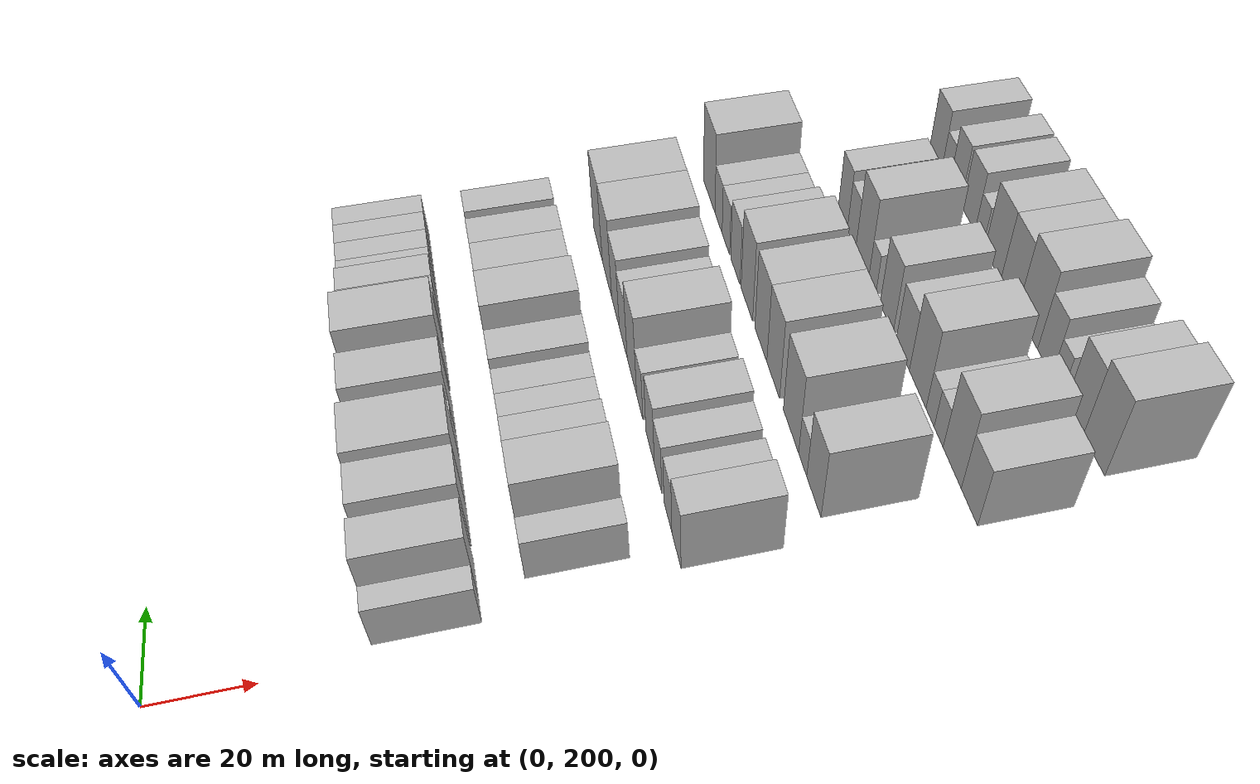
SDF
<sdf version="1.6">
 <world name="default">
  <model name="building_79">
   <static>1</static>
   <pose>50.0000 205.6428 0 0.000000 0.000000 0.000000</pose>
   <link name="link">
    <pose>0 0 6.00 0 0 0</pose>
    <collision name="collision"><geometry><box><size>20.0000 5.1127 12.0000</size></box></geometry></collision>
    <visual name="visual">
     <cast_shadows>0</cast_shadows>
     <geometry><box><size>20.0000 5.1127 12.0000</size></box></geometry>
     <material>
      <script>
       <uri>model://HANNAS_wall/materials/scripts</uri>
       <uri>model://HANNAS_wall/materials/textures</uri>
       <name>vrc/HANNAS_wall</name>
      </script>
     </material>
    </visual>
   </link>
  </model>
  <model name="building_80">
   <static>1</static>
   <pose>50.0000 212.4688 0 0.000000 0.000000 0.000000</pose>
   <link name="link">
    <pose>0 0 10.50 0 0 0</pose>
    <collision name="collision"><geometry><box><size>20.0000 8.5393 21.0000</size></box></geometry></collision>
    <visual name="visual">
     <cast_shadows>0</cast_shadows>
     <geometry><box><size>20.0000 8.5393 21.0000</size></box></geometry>
     <material>
      <script>
       <uri>model://HANNAS_wall/materials/scripts</uri>
       <uri>model://HANNAS_wall/materials/textures</uri>
       <name>vrc/HANNAS_wall</name>
      </script>
     </material>
    </visual>
   </link>
  </model>
  <model name="building_81">
   <static>1</static>
   <pose>50.0000 224.3114 0 0.000000 0.000000 0.000000</pose>
   <link name="link">
    <pose>0 0 10.50 0 0 0</pose>
    <collision name="collision"><geometry><box><size>20.0000 9.1458 21.0000</size></box></geometry></collision>
    <visual name="visual">
     <cast_shadows>0</cast_shadows>
     <geometry><box><size>20.0000 9.1458 21.0000</size></box></geometry>
     <material>
      <script>
       <uri>model://HANNAS_wall/materials/scripts</uri>
       <uri>model://HANNAS_wall/materials/textures</uri>
       <name>vrc/HANNAS_wall</name>
      </script>
     </material>
    </visual>
   </link>
  </model>
  <model name="building_82">
   <static>1</static>
   <pose>50.0000 234.7901 0 0.000000 0.000000 0.000000</pose>
   <link name="link">
    <pose>0 0 12.00 0 0 0</pose>
    <collision name="collision"><geometry><box><size>20.0000 11.8116 24.0000</size></box></geometry></collision>
    <visual name="visual">
     <cast_shadows>0</cast_shadows>
     <geometry><box><size>20.0000 11.8116 24.0000</size></box></geometry>
     <material>
      <script>
       <uri>model://HANNAS_wall/materials/scripts</uri>
       <uri>model://HANNAS_wall/materials/textures</uri>
       <name>vrc/HANNAS_wall</name>
      </script>
     </material>
    </visual>
   </link>
  </model>
  <model name="building_83">
   <static>1</static>
   <pose>50.0000 243.5842 0 0.000000 0.000000 0.000000</pose>
   <link name="link">
    <pose>0 0 6.00 0 0 0</pose>
    <collision name="collision"><geometry><box><size>20.0000 5.7765 12.0000</size></box></geometry></collision>
    <visual name="visual">
     <cast_shadows>0</cast_shadows>
     <geometry><box><size>20.0000 5.7765 12.0000</size></box></geometry>
     <material>
      <script>
       <uri>model://HANNAS_wall/materials/scripts</uri>
       <uri>model://HANNAS_wall/materials/textures</uri>
       <name>vrc/HANNAS_wall</name>
      </script>
     </material>
    </visual>
   </link>
  </model>
  <model name="building_84">
   <static>1</static>
   <pose>50.0000 251.0885 0 0.000000 0.000000 0.000000</pose>
   <link name="link">
    <pose>0 0 10.50 0 0 0</pose>
    <collision name="collision"><geometry><box><size>20.0000 9.2321 21.0000</size></box></geometry></collision>
    <visual name="visual">
     <cast_shadows>0</cast_shadows>
     <geometry><box><size>20.0000 9.2321 21.0000</size></box></geometry>
     <material>
      <script>
       <uri>model://HANNAS_wall/materials/scripts</uri>
       <uri>model://HANNAS_wall/materials/textures</uri>
       <name>vrc/HANNAS_wall</name>
      </script>
     </material>
    </visual>
   </link>
  </model>
  <model name="building_85">
   <static>1</static>
   <pose>50.0000 264.0819 0 0.000000 0.000000 0.000000</pose>
   <link name="link">
    <pose>0 0 12.00 0 0 0</pose>
    <collision name="collision"><geometry><box><size>20.0000 10.7547 24.0000</size></box></geometry></collision>
    <visual name="visual">
     <cast_shadows>0</cast_shadows>
     <geometry><box><size>20.0000 10.7547 24.0000</size></box></geometry>
     <material>
      <script>
       <uri>model://HANNAS_wall/materials/scripts</uri>
       <uri>model://HANNAS_wall/materials/textures</uri>
       <name>vrc/HANNAS_wall</name>
      </script>
     </material>
    </visual>
   </link>
  </model>
  <model name="building_86">
   <static>1</static>
   <pose>50.0000 275.5857 0 0.000000 0.000000 0.000000</pose>
   <link name="link">
    <pose>0 0 7.50 0 0 0</pose>
    <collision name="collision"><geometry><box><size>20.0000 6.2529 15.0000</size></box></geometry></collision>
    <visual name="visual">
     <cast_shadows>0</cast_shadows>
     <geometry><box><size>20.0000 6.2529 15.0000</size></box></geometry>
     <material>
      <script>
       <uri>model://HANNAS_wall/materials/scripts</uri>
       <uri>model://HANNAS_wall/materials/textures</uri>
       <name>vrc/HANNAS_wall</name>
      </script>
     </material>
    </visual>
   </link>
  </model>
  <model name="building_87">
   <static>1</static>
   <pose>50.0000 281.9773 0 0.000000 0.000000 0.000000</pose>
   <link name="link">
    <pose>0 0 7.50 0 0 0</pose>
    <collision name="collision"><geometry><box><size>20.0000 6.5304 15.0000</size></box></geometry></collision>
    <visual name="visual">
     <cast_shadows>0</cast_shadows>
     <geometry><box><size>20.0000 6.5304 15.0000</size></box></geometry>
     <material>
      <script>
       <uri>model://HANNAS_wall/materials/scripts</uri>
       <uri>model://HANNAS_wall/materials/textures</uri>
       <name>vrc/HANNAS_wall</name>
      </script>
     </material>
    </visual>
   </link>
  </model>
  <model name="building_88">
   <static>1</static>
   <pose>50.0000 287.8829 0 0.000000 0.000000 0.000000</pose>
   <link name="link">
    <pose>0 0 6.00 0 0 0</pose>
    <collision name="collision"><geometry><box><size>20.0000 5.2807 12.0000</size></box></geometry></collision>
    <visual name="visual">
     <cast_shadows>0</cast_shadows>
     <geometry><box><size>20.0000 5.2807 12.0000</size></box></geometry>
     <material>
      <script>
       <uri>model://HANNAS_wall/materials/scripts</uri>
       <uri>model://HANNAS_wall/materials/textures</uri>
       <name>vrc/HANNAS_wall</name>
      </script>
     </material>
    </visual>
   </link>
  </model>
  <model name="building_89">
   <static>1</static>
   <pose>50.0000 293.3428 0 0.000000 0.000000 0.000000</pose>
   <link name="link">
    <pose>0 0 6.00 0 0 0</pose>
    <collision name="collision"><geometry><box><size>20.0000 5.6391 12.0000</size></box></geometry></collision>
    <visual name="visual">
     <cast_shadows>0</cast_shadows>
     <geometry><box><size>20.0000 5.6391 12.0000</size></box></geometry>
     <material>
      <script>
       <uri>model://HANNAS_wall/materials/scripts</uri>
       <uri>model://HANNAS_wall/materials/textures</uri>
       <name>vrc/HANNAS_wall</name>
      </script>
     </material>
    </visual>
   </link>
  </model>
  <model name="building_90">
   <static>1</static>
   <pose>50.0000 299.0528 0 0.000000 0.000000 0.000000</pose>
   <link name="link">
    <pose>0 0 6.00 0 0 0</pose>
    <collision name="collision"><geometry><box><size>20.0000 5.7807 12.0000</size></box></geometry></collision>
    <visual name="visual">
     <cast_shadows>0</cast_shadows>
     <geometry><box><size>20.0000 5.7807 12.0000</size></box></geometry>
     <material>
      <script>
       <uri>model://HANNAS_wall/materials/scripts</uri>
       <uri>model://HANNAS_wall/materials/textures</uri>
       <name>vrc/HANNAS_wall</name>
      </script>
     </material>
    </visual>
   </link>
  </model>
  <model name="building_91">
   <static>1</static>
   <pose>50.0000 304.7321 0 0.000000 0.000000 0.000000</pose>
   <link name="link">
    <pose>0 0 6.00 0 0 0</pose>
    <collision name="collision"><geometry><box><size>20.0000 5.5780 12.0000</size></box></geometry></collision>
    <visual name="visual">
     <cast_shadows>0</cast_shadows>
     <geometry><box><size>20.0000 5.5780 12.0000</size></box></geometry>
     <material>
      <script>
       <uri>model://HANNAS_wall/materials/scripts</uri>
       <uri>model://HANNAS_wall/materials/textures</uri>
       <name>vrc/HANNAS_wall</name>
      </script>
     </material>
    </visual>
   </link>
  </model>
  <model name="building_195">
   <static>1</static>
   <pose>79.0000 213.4443 0 0.000000 0.000000 0.000000</pose>
   <link name="link">
    <pose>0 0 6.00 0 0 0</pose>
    <collision name="collision"><geometry><box><size>20.0000 5.8600 12.0000</size></box></geometry></collision>
    <visual name="visual">
     <cast_shadows>0</cast_shadows>
     <geometry><box><size>20.0000 5.8600 12.0000</size></box></geometry>
     <material>
      <script>
       <uri>model://HANNAS_wall/materials/scripts</uri>
       <uri>model://HANNAS_wall/materials/textures</uri>
       <name>vrc/HANNAS_wall</name>
      </script>
     </material>
    </visual>
   </link>
  </model>
  <model name="building_196">
   <static>1</static>
   <pose>79.0000 222.4169 0 0.000000 0.000000 0.000000</pose>
   <link name="link">
    <pose>0 0 10.50 0 0 0</pose>
    <collision name="collision"><geometry><box><size>20.0000 10.0852 21.0000</size></box></geometry></collision>
    <visual name="visual">
     <cast_shadows>0</cast_shadows>
     <geometry><box><size>20.0000 10.0852 21.0000</size></box></geometry>
     <material>
      <script>
       <uri>model://HANNAS_wall/materials/scripts</uri>
       <uri>model://HANNAS_wall/materials/textures</uri>
       <name>vrc/HANNAS_wall</name>
      </script>
     </material>
    </visual>
   </link>
  </model>
  <model name="building_197">
   <static>1</static>
   <pose>79.0000 231.4531 0 0.000000 0.000000 0.000000</pose>
   <link name="link">
    <pose>0 0 9.00 0 0 0</pose>
    <collision name="collision"><geometry><box><size>20.0000 7.9871 18.0000</size></box></geometry></collision>
    <visual name="visual">
     <cast_shadows>0</cast_shadows>
     <geometry><box><size>20.0000 7.9871 18.0000</size></box></geometry>
     <material>
      <script>
       <uri>model://HANNAS_wall/materials/scripts</uri>
       <uri>model://HANNAS_wall/materials/textures</uri>
       <name>vrc/HANNAS_wall</name>
      </script>
     </material>
    </visual>
   </link>
  </model>
  <model name="building_198">
   <static>1</static>
   <pose>79.0000 240.5364 0 0.000000 0.000000 0.000000</pose>
   <link name="link">
    <pose>0 0 7.50 0 0 0</pose>
    <collision name="collision"><geometry><box><size>20.0000 6.1796 15.0000</size></box></geometry></collision>
    <visual name="visual">
     <cast_shadows>0</cast_shadows>
     <geometry><box><size>20.0000 6.1796 15.0000</size></box></geometry>
     <material>
      <script>
       <uri>model://HANNAS_wall/materials/scripts</uri>
       <uri>model://HANNAS_wall/materials/textures</uri>
       <name>vrc/HANNAS_wall</name>
      </script>
     </material>
    </visual>
   </link>
  </model>
  <model name="building_199">
   <static>1</static>
   <pose>79.0000 246.8462 0 0.000000 0.000000 0.000000</pose>
   <link name="link">
    <pose>0 0 7.50 0 0 0</pose>
    <collision name="collision"><geometry><box><size>20.0000 6.4398 15.0000</size></box></geometry></collision>
    <visual name="visual">
     <cast_shadows>0</cast_shadows>
     <geometry><box><size>20.0000 6.4398 15.0000</size></box></geometry>
     <material>
      <script>
       <uri>model://HANNAS_wall/materials/scripts</uri>
       <uri>model://HANNAS_wall/materials/textures</uri>
       <name>vrc/HANNAS_wall</name>
      </script>
     </material>
    </visual>
   </link>
  </model>
  <model name="building_200">
   <static>1</static>
   <pose>79.0000 253.9946 0 0.000000 0.000000 0.000000</pose>
   <link name="link">
    <pose>0 0 9.00 0 0 0</pose>
    <collision name="collision"><geometry><box><size>20.0000 7.8572 18.0000</size></box></geometry></collision>
    <visual name="visual">
     <cast_shadows>0</cast_shadows>
     <geometry><box><size>20.0000 7.8572 18.0000</size></box></geometry>
     <material>
      <script>
       <uri>model://HANNAS_wall/materials/scripts</uri>
       <uri>model://HANNAS_wall/materials/textures</uri>
       <name>vrc/HANNAS_wall</name>
      </script>
     </material>
    </visual>
   </link>
  </model>
  <model name="building_201">
   <static>1</static>
   <pose>79.0000 263.9439 0 0.000000 0.000000 0.000000</pose>
   <link name="link">
    <pose>0 0 12.00 0 0 0</pose>
    <collision name="collision"><geometry><box><size>20.0000 10.0415 24.0000</size></box></geometry></collision>
    <visual name="visual">
     <cast_shadows>0</cast_shadows>
     <geometry><box><size>20.0000 10.0415 24.0000</size></box></geometry>
     <material>
      <script>
       <uri>model://HANNAS_wall/materials/scripts</uri>
       <uri>model://HANNAS_wall/materials/textures</uri>
       <name>vrc/HANNAS_wall</name>
      </script>
     </material>
    </visual>
   </link>
  </model>
  <model name="building_202">
   <static>1</static>
   <pose>79.0000 271.7608 0 0.000000 0.000000 0.000000</pose>
   <link name="link">
    <pose>0 0 6.00 0 0 0</pose>
    <collision name="collision"><geometry><box><size>20.0000 5.5922 12.0000</size></box></geometry></collision>
    <visual name="visual">
     <cast_shadows>0</cast_shadows>
     <geometry><box><size>20.0000 5.5922 12.0000</size></box></geometry>
     <material>
      <script>
       <uri>model://HANNAS_wall/materials/scripts</uri>
       <uri>model://HANNAS_wall/materials/textures</uri>
       <name>vrc/HANNAS_wall</name>
      </script>
     </material>
    </visual>
   </link>
  </model>
  <model name="building_203">
   <static>1</static>
   <pose>79.0000 278.9169 0 0.000000 0.000000 0.000000</pose>
   <link name="link">
    <pose>0 0 9.00 0 0 0</pose>
    <collision name="collision"><geometry><box><size>20.0000 8.7202 18.0000</size></box></geometry></collision>
    <visual name="visual">
     <cast_shadows>0</cast_shadows>
     <geometry><box><size>20.0000 8.7202 18.0000</size></box></geometry>
     <material>
      <script>
       <uri>model://HANNAS_wall/materials/scripts</uri>
       <uri>model://HANNAS_wall/materials/textures</uri>
       <name>vrc/HANNAS_wall</name>
      </script>
     </material>
    </visual>
   </link>
  </model>
  <model name="building_204">
   <static>1</static>
   <pose>79.0000 287.1266 0 0.000000 0.000000 0.000000</pose>
   <link name="link">
    <pose>0 0 9.00 0 0 0</pose>
    <collision name="collision"><geometry><box><size>20.0000 7.6991 18.0000</size></box></geometry></collision>
    <visual name="visual">
     <cast_shadows>0</cast_shadows>
     <geometry><box><size>20.0000 7.6991 18.0000</size></box></geometry>
     <material>
      <script>
       <uri>model://HANNAS_wall/materials/scripts</uri>
       <uri>model://HANNAS_wall/materials/textures</uri>
       <name>vrc/HANNAS_wall</name>
      </script>
     </material>
    </visual>
   </link>
  </model>
  <model name="building_205">
   <static>1</static>
   <pose>79.0000 293.6410 0 0.000000 0.000000 0.000000</pose>
   <link name="link">
    <pose>0 0 6.00 0 0 0</pose>
    <collision name="collision"><geometry><box><size>20.0000 5.3297 12.0000</size></box></geometry></collision>
    <visual name="visual">
     <cast_shadows>0</cast_shadows>
     <geometry><box><size>20.0000 5.3297 12.0000</size></box></geometry>
     <material>
      <script>
       <uri>model://HANNAS_wall/materials/scripts</uri>
       <uri>model://HANNAS_wall/materials/textures</uri>
       <name>vrc/HANNAS_wall</name>
      </script>
     </material>
    </visual>
   </link>
  </model>
  <model name="building_206">
   <static>1</static>
   <pose>79.0000 299.8928 0 0.000000 0.000000 0.000000</pose>
   <link name="link">
    <pose>0 0 7.50 0 0 0</pose>
    <collision name="collision"><geometry><box><size>20.0000 7.1740 15.0000</size></box></geometry></collision>
    <visual name="visual">
     <cast_shadows>0</cast_shadows>
     <geometry><box><size>20.0000 7.1740 15.0000</size></box></geometry>
     <material>
      <script>
       <uri>model://HANNAS_wall/materials/scripts</uri>
       <uri>model://HANNAS_wall/materials/textures</uri>
       <name>vrc/HANNAS_wall</name>
      </script>
     </material>
    </visual>
   </link>
  </model>
  <model name="building_307">
   <static>1</static>
   <pose>108.0000 210.1388 0 0.000000 0.000000 0.000000</pose>
   <link name="link">
    <pose>0 0 9.00 0 0 0</pose>
    <collision name="collision"><geometry><box><size>20.0000 8.1497 18.0000</size></box></geometry></collision>
    <visual name="visual">
     <cast_shadows>0</cast_shadows>
     <geometry><box><size>20.0000 8.1497 18.0000</size></box></geometry>
     <material>
      <script>
       <uri>model://HANNAS_wall/materials/scripts</uri>
       <uri>model://HANNAS_wall/materials/textures</uri>
       <name>vrc/HANNAS_wall</name>
      </script>
     </material>
    </visual>
   </link>
  </model>
  <model name="building_308">
   <static>1</static>
   <pose>108.0000 217.8479 0 0.000000 0.000000 0.000000</pose>
   <link name="link">
    <pose>0 0 7.50 0 0 0</pose>
    <collision name="collision"><geometry><box><size>20.0000 7.2685 15.0000</size></box></geometry></collision>
    <visual name="visual">
     <cast_shadows>0</cast_shadows>
     <geometry><box><size>20.0000 7.2685 15.0000</size></box></geometry>
     <material>
      <script>
       <uri>model://HANNAS_wall/materials/scripts</uri>
       <uri>model://HANNAS_wall/materials/textures</uri>
       <name>vrc/HANNAS_wall</name>
      </script>
     </material>
    </visual>
   </link>
  </model>
  <model name="building_309">
   <static>1</static>
   <pose>108.0000 227.0810 0 0.000000 0.000000 0.000000</pose>
   <link name="link">
    <pose>0 0 7.50 0 0 0</pose>
    <collision name="collision"><geometry><box><size>20.0000 7.1978 15.0000</size></box></geometry></collision>
    <visual name="visual">
     <cast_shadows>0</cast_shadows>
     <geometry><box><size>20.0000 7.1978 15.0000</size></box></geometry>
     <material>
      <script>
       <uri>model://HANNAS_wall/materials/scripts</uri>
       <uri>model://HANNAS_wall/materials/textures</uri>
       <name>vrc/HANNAS_wall</name>
      </script>
     </material>
    </visual>
   </link>
  </model>
  <model name="building_310">
   <static>1</static>
   <pose>108.0000 234.9306 0 0.000000 0.000000 0.000000</pose>
   <link name="link">
    <pose>0 0 9.00 0 0 0</pose>
    <collision name="collision"><geometry><box><size>20.0000 8.5014 18.0000</size></box></geometry></collision>
    <visual name="visual">
     <cast_shadows>0</cast_shadows>
     <geometry><box><size>20.0000 8.5014 18.0000</size></box></geometry>
     <material>
      <script>
       <uri>model://HANNAS_wall/materials/scripts</uri>
       <uri>model://HANNAS_wall/materials/textures</uri>
       <name>vrc/HANNAS_wall</name>
      </script>
     </material>
    </visual>
   </link>
  </model>
  <model name="building_311">
   <static>1</static>
   <pose>108.0000 245.5363 0 0.000000 0.000000 0.000000</pose>
   <link name="link">
    <pose>0 0 7.50 0 0 0</pose>
    <collision name="collision"><geometry><box><size>20.0000 6.7099 15.0000</size></box></geometry></collision>
    <visual name="visual">
     <cast_shadows>0</cast_shadows>
     <geometry><box><size>20.0000 6.7099 15.0000</size></box></geometry>
     <material>
      <script>
       <uri>model://HANNAS_wall/materials/scripts</uri>
       <uri>model://HANNAS_wall/materials/textures</uri>
       <name>vrc/HANNAS_wall</name>
      </script>
     </material>
    </visual>
   </link>
  </model>
  <model name="building_312">
   <static>1</static>
   <pose>108.0000 254.0396 0 0.000000 0.000000 0.000000</pose>
   <link name="link">
    <pose>0 0 12.00 0 0 0</pose>
    <collision name="collision"><geometry><box><size>20.0000 10.2968 24.0000</size></box></geometry></collision>
    <visual name="visual">
     <cast_shadows>0</cast_shadows>
     <geometry><box><size>20.0000 10.2968 24.0000</size></box></geometry>
     <material>
      <script>
       <uri>model://HANNAS_wall/materials/scripts</uri>
       <uri>model://HANNAS_wall/materials/textures</uri>
       <name>vrc/HANNAS_wall</name>
      </script>
     </material>
    </visual>
   </link>
  </model>
  <model name="building_313">
   <static>1</static>
   <pose>108.0000 263.6789 0 0.000000 0.000000 0.000000</pose>
   <link name="link">
    <pose>0 0 9.00 0 0 0</pose>
    <collision name="collision"><geometry><box><size>20.0000 8.9817 18.0000</size></box></geometry></collision>
    <visual name="visual">
     <cast_shadows>0</cast_shadows>
     <geometry><box><size>20.0000 8.9817 18.0000</size></box></geometry>
     <material>
      <script>
       <uri>model://HANNAS_wall/materials/scripts</uri>
       <uri>model://HANNAS_wall/materials/textures</uri>
       <name>vrc/HANNAS_wall</name>
      </script>
     </material>
    </visual>
   </link>
  </model>
  <model name="building_314">
   <static>1</static>
   <pose>108.0000 272.7042 0 0.000000 0.000000 0.000000</pose>
   <link name="link">
    <pose>0 0 10.50 0 0 0</pose>
    <collision name="collision"><geometry><box><size>20.0000 9.0689 21.0000</size></box></geometry></collision>
    <visual name="visual">
     <cast_shadows>0</cast_shadows>
     <geometry><box><size>20.0000 9.0689 21.0000</size></box></geometry>
     <material>
      <script>
       <uri>model://HANNAS_wall/materials/scripts</uri>
       <uri>model://HANNAS_wall/materials/textures</uri>
       <name>vrc/HANNAS_wall</name>
      </script>
     </material>
    </visual>
   </link>
  </model>
  <model name="building_315">
   <static>1</static>
   <pose>108.0000 283.1587 0 0.000000 0.000000 0.000000</pose>
   <link name="link">
    <pose>0 0 12.00 0 0 0</pose>
    <collision name="collision"><geometry><box><size>20.0000 11.8402 24.0000</size></box></geometry></collision>
    <visual name="visual">
     <cast_shadows>0</cast_shadows>
     <geometry><box><size>20.0000 11.8402 24.0000</size></box></geometry>
     <material>
      <script>
       <uri>model://HANNAS_wall/materials/scripts</uri>
       <uri>model://HANNAS_wall/materials/textures</uri>
       <name>vrc/HANNAS_wall</name>
      </script>
     </material>
    </visual>
   </link>
  </model>
  <model name="building_316">
   <static>1</static>
   <pose>108.0000 294.6804 0 0.000000 0.000000 0.000000</pose>
   <link name="link">
    <pose>0 0 12.00 0 0 0</pose>
    <collision name="collision"><geometry><box><size>20.0000 11.2031 24.0000</size></box></geometry></collision>
    <visual name="visual">
     <cast_shadows>0</cast_shadows>
     <geometry><box><size>20.0000 11.2031 24.0000</size></box></geometry>
     <material>
      <script>
       <uri>model://HANNAS_wall/materials/scripts</uri>
       <uri>model://HANNAS_wall/materials/textures</uri>
       <name>vrc/HANNAS_wall</name>
      </script>
     </material>
    </visual>
   </link>
  </model>
  <model name="building_418">
   <static>1</static>
   <pose>137.0000 216.0591 0 0.000000 0.000000 0.000000</pose>
   <link name="link">
    <pose>0 0 10.50 0 0 0</pose>
    <collision name="collision"><geometry><box><size>20.0000 9.9078 21.0000</size></box></geometry></collision>
    <visual name="visual">
     <cast_shadows>0</cast_shadows>
     <geometry><box><size>20.0000 9.9078 21.0000</size></box></geometry>
     <material>
      <script>
       <uri>model://HANNAS_wall/materials/scripts</uri>
       <uri>model://HANNAS_wall/materials/textures</uri>
       <name>vrc/HANNAS_wall</name>
      </script>
     </material>
    </visual>
   </link>
  </model>
  <model name="building_419">
   <static>1</static>
   <pose>137.0000 223.9644 0 0.000000 0.000000 0.000000</pose>
   <link name="link">
    <pose>0 0 6.00 0 0 0</pose>
    <collision name="collision"><geometry><box><size>20.0000 5.9028 12.0000</size></box></geometry></collision>
    <visual name="visual">
     <cast_shadows>0</cast_shadows>
     <geometry><box><size>20.0000 5.9028 12.0000</size></box></geometry>
     <material>
      <script>
       <uri>model://HANNAS_wall/materials/scripts</uri>
       <uri>model://HANNAS_wall/materials/textures</uri>
       <name>vrc/HANNAS_wall</name>
      </script>
     </material>
    </visual>
   </link>
  </model>
  <model name="building_420">
   <static>1</static>
   <pose>137.0000 232.6401 0 0.000000 0.000000 0.000000</pose>
   <link name="link">
    <pose>0 0 12.00 0 0 0</pose>
    <collision name="collision"><geometry><box><size>20.0000 11.4486 24.0000</size></box></geometry></collision>
    <visual name="visual">
     <cast_shadows>0</cast_shadows>
     <geometry><box><size>20.0000 11.4486 24.0000</size></box></geometry>
     <material>
      <script>
       <uri>model://HANNAS_wall/materials/scripts</uri>
       <uri>model://HANNAS_wall/materials/textures</uri>
       <name>vrc/HANNAS_wall</name>
      </script>
     </material>
    </visual>
   </link>
  </model>
  <model name="building_421">
   <static>1</static>
   <pose>137.0000 246.5015 0 0.000000 0.000000 0.000000</pose>
   <link name="link">
    <pose>0 0 12.00 0 0 0</pose>
    <collision name="collision"><geometry><box><size>20.0000 10.2742 24.0000</size></box></geometry></collision>
    <visual name="visual">
     <cast_shadows>0</cast_shadows>
     <geometry><box><size>20.0000 10.2742 24.0000</size></box></geometry>
     <material>
      <script>
       <uri>model://HANNAS_wall/materials/scripts</uri>
       <uri>model://HANNAS_wall/materials/textures</uri>
       <name>vrc/HANNAS_wall</name>
      </script>
     </material>
    </visual>
   </link>
  </model>
  <model name="building_422">
   <static>1</static>
   <pose>137.0000 256.6675 0 0.000000 0.000000 0.000000</pose>
   <link name="link">
    <pose>0 0 12.00 0 0 0</pose>
    <collision name="collision"><geometry><box><size>20.0000 10.0579 24.0000</size></box></geometry></collision>
    <visual name="visual">
     <cast_shadows>0</cast_shadows>
     <geometry><box><size>20.0000 10.0579 24.0000</size></box></geometry>
     <material>
      <script>
       <uri>model://HANNAS_wall/materials/scripts</uri>
       <uri>model://HANNAS_wall/materials/textures</uri>
       <name>vrc/HANNAS_wall</name>
      </script>
     </material>
    </visual>
   </link>
  </model>
  <model name="building_423">
   <static>1</static>
   <pose>137.0000 268.8392 0 0.000000 0.000000 0.000000</pose>
   <link name="link">
    <pose>0 0 12.00 0 0 0</pose>
    <collision name="collision"><geometry><box><size>20.0000 10.2855 24.0000</size></box></geometry></collision>
    <visual name="visual">
     <cast_shadows>0</cast_shadows>
     <geometry><box><size>20.0000 10.2855 24.0000</size></box></geometry>
     <material>
      <script>
       <uri>model://HANNAS_wall/materials/scripts</uri>
       <uri>model://HANNAS_wall/materials/textures</uri>
       <name>vrc/HANNAS_wall</name>
      </script>
     </material>
    </visual>
   </link>
  </model>
  <model name="building_424">
   <static>1</static>
   <pose>137.0000 279.3304 0 0.000000 0.000000 0.000000</pose>
   <link name="link">
    <pose>0 0 9.00 0 0 0</pose>
    <collision name="collision"><geometry><box><size>20.0000 8.6967 18.0000</size></box></geometry></collision>
    <visual name="visual">
     <cast_shadows>0</cast_shadows>
     <geometry><box><size>20.0000 8.6967 18.0000</size></box></geometry>
     <material>
      <script>
       <uri>model://HANNAS_wall/materials/scripts</uri>
       <uri>model://HANNAS_wall/materials/textures</uri>
       <name>vrc/HANNAS_wall</name>
      </script>
     </material>
    </visual>
   </link>
  </model>
  <model name="building_425">
   <static>1</static>
   <pose>137.0000 288.3190 0 0.000000 0.000000 0.000000</pose>
   <link name="link">
    <pose>0 0 7.50 0 0 0</pose>
    <collision name="collision"><geometry><box><size>20.0000 7.2805 15.0000</size></box></geometry></collision>
    <visual name="visual">
     <cast_shadows>0</cast_shadows>
     <geometry><box><size>20.0000 7.2805 15.0000</size></box></geometry>
     <material>
      <script>
       <uri>model://HANNAS_wall/materials/scripts</uri>
       <uri>model://HANNAS_wall/materials/textures</uri>
       <name>vrc/HANNAS_wall</name>
      </script>
     </material>
    </visual>
   </link>
  </model>
  <model name="building_426">
   <static>1</static>
   <pose>137.0000 295.4996 0 0.000000 0.000000 0.000000</pose>
   <link name="link">
    <pose>0 0 7.50 0 0 0</pose>
    <collision name="collision"><geometry><box><size>20.0000 7.0808 15.0000</size></box></geometry></collision>
    <visual name="visual">
     <cast_shadows>0</cast_shadows>
     <geometry><box><size>20.0000 7.0808 15.0000</size></box></geometry>
     <material>
      <script>
       <uri>model://HANNAS_wall/materials/scripts</uri>
       <uri>model://HANNAS_wall/materials/textures</uri>
       <name>vrc/HANNAS_wall</name>
      </script>
     </material>
    </visual>
   </link>
  </model>
  <model name="building_427">
   <static>1</static>
   <pose>137.0000 304.9110 0 0.000000 0.000000 0.000000</pose>
   <link name="link">
    <pose>0 0 12.00 0 0 0</pose>
    <collision name="collision"><geometry><box><size>20.0000 11.7420 24.0000</size></box></geometry></collision>
    <visual name="visual">
     <cast_shadows>0</cast_shadows>
     <geometry><box><size>20.0000 11.7420 24.0000</size></box></geometry>
     <material>
      <script>
       <uri>model://HANNAS_wall/materials/scripts</uri>
       <uri>model://HANNAS_wall/materials/textures</uri>
       <name>vrc/HANNAS_wall</name>
      </script>
     </material>
    </visual>
   </link>
  </model>
  <model name="building_535">
   <static>1</static>
   <pose>166.0000 206.9370 0 0.000000 0.000000 0.000000</pose>
   <link name="link">
    <pose>0 0 9.00 0 0 0</pose>
    <collision name="collision"><geometry><box><size>20.0000 8.8829 18.0000</size></box></geometry></collision>
    <visual name="visual">
     <cast_shadows>0</cast_shadows>
     <geometry><box><size>20.0000 8.8829 18.0000</size></box></geometry>
     <material>
      <script>
       <uri>model://HANNAS_wall/materials/scripts</uri>
       <uri>model://HANNAS_wall/materials/textures</uri>
       <name>vrc/HANNAS_wall</name>
      </script>
     </material>
    </visual>
   </link>
  </model>
  <model name="building_536">
   <static>1</static>
   <pose>166.0000 216.5528 0 0.000000 0.000000 0.000000</pose>
   <link name="link">
    <pose>0 0 12.00 0 0 0</pose>
    <collision name="collision"><geometry><box><size>20.0000 10.3487 24.0000</size></box></geometry></collision>
    <visual name="visual">
     <cast_shadows>0</cast_shadows>
     <geometry><box><size>20.0000 10.3487 24.0000</size></box></geometry>
     <material>
      <script>
       <uri>model://HANNAS_wall/materials/scripts</uri>
       <uri>model://HANNAS_wall/materials/textures</uri>
       <name>vrc/HANNAS_wall</name>
      </script>
     </material>
    </visual>
   </link>
  </model>
  <model name="building_537">
   <static>1</static>
   <pose>166.0000 224.3945 0 0.000000 0.000000 0.000000</pose>
   <link name="link">
    <pose>0 0 6.00 0 0 0</pose>
    <collision name="collision"><geometry><box><size>20.0000 5.3346 12.0000</size></box></geometry></collision>
    <visual name="visual">
     <cast_shadows>0</cast_shadows>
     <geometry><box><size>20.0000 5.3346 12.0000</size></box></geometry>
     <material>
      <script>
       <uri>model://HANNAS_wall/materials/scripts</uri>
       <uri>model://HANNAS_wall/materials/textures</uri>
       <name>vrc/HANNAS_wall</name>
      </script>
     </material>
    </visual>
   </link>
  </model>
  <model name="building_538">
   <static>1</static>
   <pose>166.0000 229.5328 0 0.000000 0.000000 0.000000</pose>
   <link name="link">
    <pose>0 0 6.00 0 0 0</pose>
    <collision name="collision"><geometry><box><size>20.0000 4.9421 12.0000</size></box></geometry></collision>
    <visual name="visual">
     <cast_shadows>0</cast_shadows>
     <geometry><box><size>20.0000 4.9421 12.0000</size></box></geometry>
     <material>
      <script>
       <uri>model://HANNAS_wall/materials/scripts</uri>
       <uri>model://HANNAS_wall/materials/textures</uri>
       <name>vrc/HANNAS_wall</name>
      </script>
     </material>
    </visual>
   </link>
  </model>
  <model name="building_539">
   <static>1</static>
   <pose>166.0000 237.2424 0 0.000000 0.000000 0.000000</pose>
   <link name="link">
    <pose>0 0 12.00 0 0 0</pose>
    <collision name="collision"><geometry><box><size>20.0000 10.4771 24.0000</size></box></geometry></collision>
    <visual name="visual">
     <cast_shadows>0</cast_shadows>
     <geometry><box><size>20.0000 10.4771 24.0000</size></box></geometry>
     <material>
      <script>
       <uri>model://HANNAS_wall/materials/scripts</uri>
       <uri>model://HANNAS_wall/materials/textures</uri>
       <name>vrc/HANNAS_wall</name>
      </script>
     </material>
    </visual>
   </link>
  </model>
  <model name="building_540">
   <static>1</static>
   <pose>166.0000 246.8794 0 0.000000 0.000000 0.000000</pose>
   <link name="link">
    <pose>0 0 9.00 0 0 0</pose>
    <collision name="collision"><geometry><box><size>20.0000 8.7969 18.0000</size></box></geometry></collision>
    <visual name="visual">
     <cast_shadows>0</cast_shadows>
     <geometry><box><size>20.0000 8.7969 18.0000</size></box></geometry>
     <material>
      <script>
       <uri>model://HANNAS_wall/materials/scripts</uri>
       <uri>model://HANNAS_wall/materials/textures</uri>
       <name>vrc/HANNAS_wall</name>
      </script>
     </material>
    </visual>
   </link>
  </model>
  <model name="building_541">
   <static>1</static>
   <pose>166.0000 257.8023 0 0.000000 0.000000 0.000000</pose>
   <link name="link">
    <pose>0 0 10.50 0 0 0</pose>
    <collision name="collision"><geometry><box><size>20.0000 9.0489 21.0000</size></box></geometry></collision>
    <visual name="visual">
     <cast_shadows>0</cast_shadows>
     <geometry><box><size>20.0000 9.0489 21.0000</size></box></geometry>
     <material>
      <script>
       <uri>model://HANNAS_wall/materials/scripts</uri>
       <uri>model://HANNAS_wall/materials/textures</uri>
       <name>vrc/HANNAS_wall</name>
      </script>
     </material>
    </visual>
   </link>
  </model>
  <model name="building_542">
   <static>1</static>
   <pose>166.0000 267.8949 0 0.000000 0.000000 0.000000</pose>
   <link name="link">
    <pose>0 0 6.00 0 0 0</pose>
    <collision name="collision"><geometry><box><size>20.0000 5.1362 12.0000</size></box></geometry></collision>
    <visual name="visual">
     <cast_shadows>0</cast_shadows>
     <geometry><box><size>20.0000 5.1362 12.0000</size></box></geometry>
     <material>
      <script>
       <uri>model://HANNAS_wall/materials/scripts</uri>
       <uri>model://HANNAS_wall/materials/textures</uri>
       <name>vrc/HANNAS_wall</name>
      </script>
     </material>
    </visual>
   </link>
  </model>
  <model name="building_543">
   <static>1</static>
   <pose>166.0000 275.3148 0 0.000000 0.000000 0.000000</pose>
   <link name="link">
    <pose>0 0 12.00 0 0 0</pose>
    <collision name="collision"><geometry><box><size>20.0000 9.7035 24.0000</size></box></geometry></collision>
    <visual name="visual">
     <cast_shadows>0</cast_shadows>
     <geometry><box><size>20.0000 9.7035 24.0000</size></box></geometry>
     <material>
      <script>
       <uri>model://HANNAS_wall/materials/scripts</uri>
       <uri>model://HANNAS_wall/materials/textures</uri>
       <name>vrc/HANNAS_wall</name>
      </script>
     </material>
    </visual>
   </link>
  </model>
  <model name="building_544">
   <static>1</static>
   <pose>166.0000 283.4241 0 0.000000 0.000000 0.000000</pose>
   <link name="link">
    <pose>0 0 7.50 0 0 0</pose>
    <collision name="collision"><geometry><box><size>20.0000 6.5151 15.0000</size></box></geometry></collision>
    <visual name="visual">
     <cast_shadows>0</cast_shadows>
     <geometry><box><size>20.0000 6.5151 15.0000</size></box></geometry>
     <material>
      <script>
       <uri>model://HANNAS_wall/materials/scripts</uri>
       <uri>model://HANNAS_wall/materials/textures</uri>
       <name>vrc/HANNAS_wall</name>
      </script>
     </material>
    </visual>
   </link>
  </model>
  <model name="building_545">
   <static>1</static>
   <pose>166.0000 290.3057 0 0.000000 0.000000 0.000000</pose>
   <link name="link">
    <pose>0 0 9.00 0 0 0</pose>
    <collision name="collision"><geometry><box><size>20.0000 7.2482 18.0000</size></box></geometry></collision>
    <visual name="visual">
     <cast_shadows>0</cast_shadows>
     <geometry><box><size>20.0000 7.2482 18.0000</size></box></geometry>
     <material>
      <script>
       <uri>model://HANNAS_wall/materials/scripts</uri>
       <uri>model://HANNAS_wall/materials/textures</uri>
       <name>vrc/HANNAS_wall</name>
      </script>
     </material>
    </visual>
   </link>
  </model>
  <model name="building_640">
   <static>1</static>
   <pose>195.0000 213.0607 0 0.000000 0.000000 0.000000</pose>
   <link name="link">
    <pose>0 0 12.00 0 0 0</pose>
    <collision name="collision"><geometry><box><size>20.0000 10.3497 24.0000</size></box></geometry></collision>
    <visual name="visual">
     <cast_shadows>0</cast_shadows>
     <geometry><box><size>20.0000 10.3497 24.0000</size></box></geometry>
     <material>
      <script>
       <uri>model://HANNAS_wall/materials/scripts</uri>
       <uri>model://HANNAS_wall/materials/textures</uri>
       <name>vrc/HANNAS_wall</name>
      </script>
     </material>
    </visual>
   </link>
  </model>
  <model name="building_641">
   <static>1</static>
   <pose>195.0000 222.5648 0 0.000000 0.000000 0.000000</pose>
   <link name="link">
    <pose>0 0 10.50 0 0 0</pose>
    <collision name="collision"><geometry><box><size>20.0000 8.6585 21.0000</size></box></geometry></collision>
    <visual name="visual">
     <cast_shadows>0</cast_shadows>
     <geometry><box><size>20.0000 8.6585 21.0000</size></box></geometry>
     <material>
      <script>
       <uri>model://HANNAS_wall/materials/scripts</uri>
       <uri>model://HANNAS_wall/materials/textures</uri>
       <name>vrc/HANNAS_wall</name>
      </script>
     </material>
    </visual>
   </link>
  </model>
  <model name="building_642">
   <static>1</static>
   <pose>195.0000 231.5932 0 0.000000 0.000000 0.000000</pose>
   <link name="link">
    <pose>0 0 6.00 0 0 0</pose>
    <collision name="collision"><geometry><box><size>20.0000 5.3984 12.0000</size></box></geometry></collision>
    <visual name="visual">
     <cast_shadows>0</cast_shadows>
     <geometry><box><size>20.0000 5.3984 12.0000</size></box></geometry>
     <material>
      <script>
       <uri>model://HANNAS_wall/materials/scripts</uri>
       <uri>model://HANNAS_wall/materials/textures</uri>
       <name>vrc/HANNAS_wall</name>
      </script>
     </material>
    </visual>
   </link>
  </model>
  <model name="building_643">
   <static>1</static>
   <pose>195.0000 238.1357 0 0.000000 0.000000 0.000000</pose>
   <link name="link">
    <pose>0 0 9.00 0 0 0</pose>
    <collision name="collision"><geometry><box><size>20.0000 7.6866 18.0000</size></box></geometry></collision>
    <visual name="visual">
     <cast_shadows>0</cast_shadows>
     <geometry><box><size>20.0000 7.6866 18.0000</size></box></geometry>
     <material>
      <script>
       <uri>model://HANNAS_wall/materials/scripts</uri>
       <uri>model://HANNAS_wall/materials/textures</uri>
       <name>vrc/HANNAS_wall</name>
      </script>
     </material>
    </visual>
   </link>
  </model>
  <model name="building_644">
   <static>1</static>
   <pose>195.0000 247.6889 0 0.000000 0.000000 0.000000</pose>
   <link name="link">
    <pose>0 0 12.00 0 0 0</pose>
    <collision name="collision"><geometry><box><size>20.0000 11.4199 24.0000</size></box></geometry></collision>
    <visual name="visual">
     <cast_shadows>0</cast_shadows>
     <geometry><box><size>20.0000 11.4199 24.0000</size></box></geometry>
     <material>
      <script>
       <uri>model://HANNAS_wall/materials/scripts</uri>
       <uri>model://HANNAS_wall/materials/textures</uri>
       <name>vrc/HANNAS_wall</name>
      </script>
     </material>
    </visual>
   </link>
  </model>
  <model name="building_645">
   <static>1</static>
   <pose>195.0000 258.2882 0 0.000000 0.000000 0.000000</pose>
   <link name="link">
    <pose>0 0 10.50 0 0 0</pose>
    <collision name="collision"><geometry><box><size>20.0000 9.7786 21.0000</size></box></geometry></collision>
    <visual name="visual">
     <cast_shadows>0</cast_shadows>
     <geometry><box><size>20.0000 9.7786 21.0000</size></box></geometry>
     <material>
      <script>
       <uri>model://HANNAS_wall/materials/scripts</uri>
       <uri>model://HANNAS_wall/materials/textures</uri>
       <name>vrc/HANNAS_wall</name>
      </script>
     </material>
    </visual>
   </link>
  </model>
  <model name="building_646">
   <static>1</static>
   <pose>195.0000 268.1791 0 0.000000 0.000000 0.000000</pose>
   <link name="link">
    <pose>0 0 10.50 0 0 0</pose>
    <collision name="collision"><geometry><box><size>20.0000 10.0033 21.0000</size></box></geometry></collision>
    <visual name="visual">
     <cast_shadows>0</cast_shadows>
     <geometry><box><size>20.0000 10.0033 21.0000</size></box></geometry>
     <material>
      <script>
       <uri>model://HANNAS_wall/materials/scripts</uri>
       <uri>model://HANNAS_wall/materials/textures</uri>
       <name>vrc/HANNAS_wall</name>
      </script>
     </material>
    </visual>
   </link>
  </model>
  <model name="building_647">
   <static>1</static>
   <pose>195.0000 276.7895 0 0.000000 0.000000 0.000000</pose>
   <link name="link">
    <pose>0 0 6.00 0 0 0</pose>
    <collision name="collision"><geometry><box><size>20.0000 5.2174 12.0000</size></box></geometry></collision>
    <visual name="visual">
     <cast_shadows>0</cast_shadows>
     <geometry><box><size>20.0000 5.2174 12.0000</size></box></geometry>
     <material>
      <script>
       <uri>model://HANNAS_wall/materials/scripts</uri>
       <uri>model://HANNAS_wall/materials/textures</uri>
       <name>vrc/HANNAS_wall</name>
      </script>
     </material>
    </visual>
   </link>
  </model>
  <model name="building_648">
   <static>1</static>
   <pose>195.0000 283.5950 0 0.000000 0.000000 0.000000</pose>
   <link name="link">
    <pose>0 0 9.00 0 0 0</pose>
    <collision name="collision"><geometry><box><size>20.0000 8.3937 18.0000</size></box></geometry></collision>
    <visual name="visual">
     <cast_shadows>0</cast_shadows>
     <geometry><box><size>20.0000 8.3937 18.0000</size></box></geometry>
     <material>
      <script>
       <uri>model://HANNAS_wall/materials/scripts</uri>
       <uri>model://HANNAS_wall/materials/textures</uri>
       <name>vrc/HANNAS_wall</name>
      </script>
     </material>
    </visual>
   </link>
  </model>
  <model name="building_649">
   <static>1</static>
   <pose>195.0000 292.5487 0 0.000000 0.000000 0.000000</pose>
   <link name="link">
    <pose>0 0 9.00 0 0 0</pose>
    <collision name="collision"><geometry><box><size>20.0000 7.5136 18.0000</size></box></geometry></collision>
    <visual name="visual">
     <cast_shadows>0</cast_shadows>
     <geometry><box><size>20.0000 7.5136 18.0000</size></box></geometry>
     <material>
      <script>
       <uri>model://HANNAS_wall/materials/scripts</uri>
       <uri>model://HANNAS_wall/materials/textures</uri>
       <name>vrc/HANNAS_wall</name>
      </script>
     </material>
    </visual>
   </link>
  </model>
  <model name="building_650">
   <static>1</static>
   <pose>195.0000 299.0274 0 0.000000 0.000000 0.000000</pose>
   <link name="link">
    <pose>0 0 6.00 0 0 0</pose>
    <collision name="collision"><geometry><box><size>20.0000 5.4439 12.0000</size></box></geometry></collision>
    <visual name="visual">
     <cast_shadows>0</cast_shadows>
     <geometry><box><size>20.0000 5.4439 12.0000</size></box></geometry>
     <material>
      <script>
       <uri>model://HANNAS_wall/materials/scripts</uri>
       <uri>model://HANNAS_wall/materials/textures</uri>
       <name>vrc/HANNAS_wall</name>
      </script>
     </material>
    </visual>
   </link>
  </model>
  <model name="building_651">
   <static>1</static>
   <pose>195.0000 306.0587 0 0.000000 0.000000 0.000000</pose>
   <link name="link">
    <pose>0 0 9.00 0 0 0</pose>
    <collision name="collision"><geometry><box><size>20.0000 8.6186 18.0000</size></box></geometry></collision>
    <visual name="visual">
     <cast_shadows>0</cast_shadows>
     <geometry><box><size>20.0000 8.6186 18.0000</size></box></geometry>
     <material>
      <script>
       <uri>model://HANNAS_wall/materials/scripts</uri>
       <uri>model://HANNAS_wall/materials/textures</uri>
       <name>vrc/HANNAS_wall</name>
      </script>
     </material>
    </visual>
   </link>
  </model>
 </world>
</sdf>
